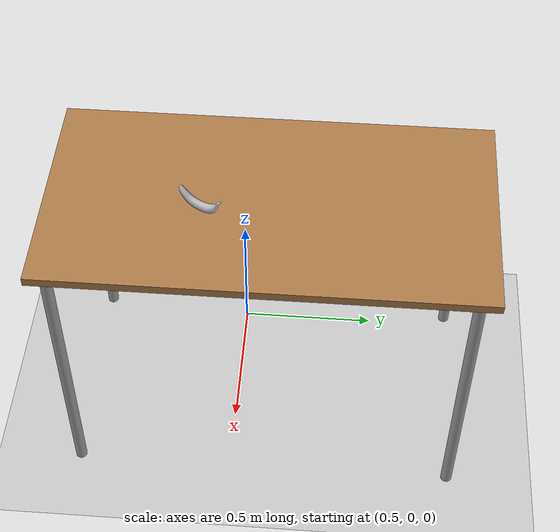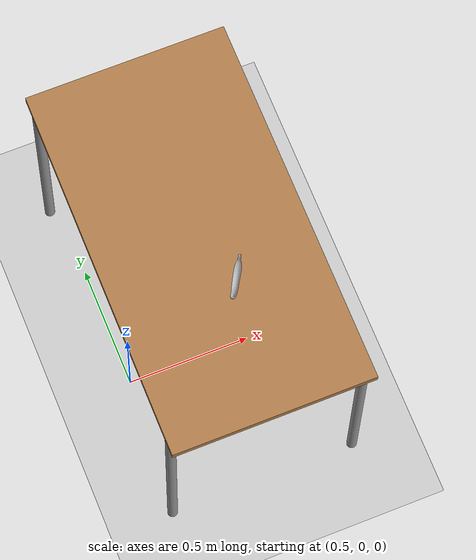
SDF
<sdf version="1.6">
 <world name="default">
  <model name="ground_plane">
   <static>1</static>
   <link name="link">
    <collision name="collision">
     <geometry><plane><normal>0 0 1</normal><size>100 100</size></plane></geometry>
     <surface>
      <contact><collide_bitmask>65535</collide_bitmask></contact>
      <friction><ode><mu>100</mu><mu2>50</mu2></ode></friction>
     </surface>
    </collision>
    <visual name="visual">
     <cast_shadows>0</cast_shadows>
     <geometry><plane><normal>0 0 1</normal><size>100 100</size></plane></geometry>
     <material>
      <script><uri>file://media/materials/scripts/gazebo.material</uri><name>Gazebo/Grey</name></script>
     </material>
    </visual>
   </link>
  </model>
  <light name="sun" type="directional">
   <pose>0 0 10 0 -0 0</pose>
   <diffuse>0.8 0.8 0.8 1</diffuse>
   <specular>0.2 0.2 0.2 1</specular>
   <attenuation>
    <range>1000</range>
    <constant>0.9</constant>
    <linear>0.01</linear>
    <quadratic>0.001</quadratic>
   </attenuation>
   <direction>-0.5 0.1 -0.9</direction>
  </light>
  <physics name="default_physics" default="0" type="ode">
   <real_time_update_rate>1000</real_time_update_rate>
   <max_step_size>0.001</max_step_size>
   <real_time_factor>1</real_time_factor>
  </physics>
  <gravity>0 0 -9.81</gravity>
  <model name="table">
   <static>1</static>
   <link name="link">
    <collision name="surface">
     <pose>0 0 1 0 -0 0</pose>
     <geometry><box><size>1.5 0.8 0.03</size></box></geometry>
     <surface><friction><ode><mu>0.6</mu><mu2>0.6</mu2></ode></friction></surface>
    </collision>
    <visual name="visual1">
     <pose>0 0 1 0 -0 0</pose>
     <geometry><box><size>1.5 0.8 0.03</size></box></geometry>
     <material>
      <script><uri>file://media/materials/scripts/gazebo.material</uri><name>Gazebo/Wood</name></script>
     </material>
    </visual>
    <collision name="front_left_leg">
     <pose>0.68 0.38 0.5 0 -0 0</pose>
     <geometry><cylinder><radius>0.02</radius><length>1</length></cylinder></geometry>
    </collision>
    <visual name="front_left_leg">
     <pose>0.68 0.38 0.5 0 -0 0</pose>
     <geometry><cylinder><radius>0.02</radius><length>1</length></cylinder></geometry>
     <material>
      <script><uri>file://media/materials/scripts/gazebo.material</uri><name>Gazebo/Grey</name></script>
     </material>
    </visual>
    <collision name="front_right_leg">
     <pose>0.68 -0.38 0.5 0 -0 0</pose>
     <geometry><cylinder><radius>0.02</radius><length>1</length></cylinder></geometry>
    </collision>
    <visual name="front_right_leg">
     <pose>0.68 -0.38 0.5 0 -0 0</pose>
     <geometry><cylinder><radius>0.02</radius><length>1</length></cylinder></geometry>
     <material>
      <script><uri>file://media/materials/scripts/gazebo.material</uri><name>Gazebo/Grey</name></script>
     </material>
    </visual>
    <collision name="back_right_leg">
     <pose>-0.68 -0.38 0.5 0 -0 0</pose>
     <geometry><cylinder><radius>0.02</radius><length>1</length></cylinder></geometry>
    </collision>
    <visual name="back_right_leg">
     <pose>-0.68 -0.38 0.5 0 -0 0</pose>
     <geometry><cylinder><radius>0.02</radius><length>1</length></cylinder></geometry>
     <material>
      <script><uri>file://media/materials/scripts/gazebo.material</uri><name>Gazebo/Grey</name></script>
     </material>
    </visual>
    <collision name="back_left_leg">
     <pose>-0.68 0.38 0.5 0 -0 0</pose>
     <geometry><cylinder><radius>0.02</radius><length>1</length></cylinder></geometry>
    </collision>
    <visual name="back_left_leg">
     <pose>-0.68 0.38 0.5 0 -0 0</pose>
     <geometry><cylinder><radius>0.02</radius><length>1</length></cylinder></geometry>
     <material>
      <script><uri>file://media/materials/scripts/gazebo.material</uri><name>Gazebo/Grey</name></script>
     </material>
    </visual>
   </link>
   <pose>0.841318 0.121873 0 0 -0 1.5708</pose>
  </model>
  <magnetic_field>6e-06 2.3e-05 -4.2e-05</magnetic_field>
  <atmosphere type="adiabatic"/>
  <scene><ambient>0.4 0.4 0.4 1</ambient><background>0.7 0.7 0.7 1</background><shadows>1</shadows></scene>
  <spherical_coordinates>
   <surface_model>EARTH_WGS84</surface_model>
   <latitude_deg>0</latitude_deg>
   <longitude_deg>0</longitude_deg>
   <elevation>0</elevation>
   <heading_deg>0</heading_deg>
  </spherical_coordinates>
  <light name="user_directional_light_0" type="directional">
   <pose>-9.71911 2.85107 1 0 -0 0</pose>
   <diffuse>0.5 0.5 0.5 1</diffuse>
   <specular>0.1 0.1 0.1 1</specular>
   <direction>0.1 0.1 -0.9</direction>
   <attenuation>
    <range>20</range>
    <constant>0.5</constant>
    <linear>0.01</linear>
    <quadratic>0.001</quadratic>
   </attenuation>
  </light>
  <model name="fruit22">
   <pose>0.937746 -0.123443 1.06016 0 0 -0.531488</pose>
   <static>1</static>
   <link name="body">
    <visual name="visual">
     <geometry><mesh><uri>/home/pepperoniflame/Downloads/gazebo_models/model28.dae</uri></mesh></geometry>
    </visual>
   </link>
  </model>
 </world>
</sdf>
